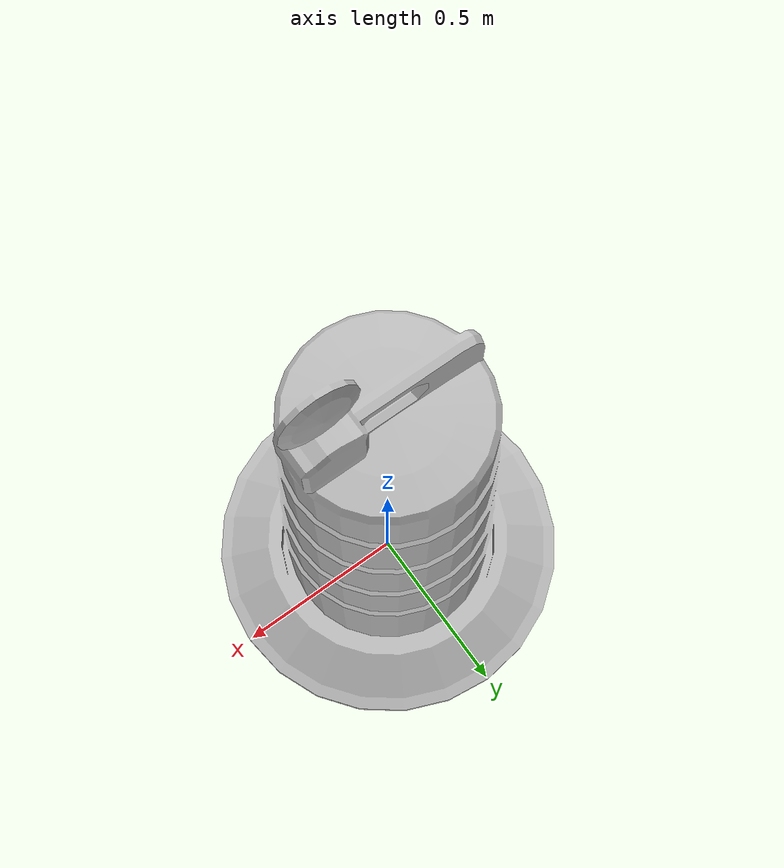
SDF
<?xml version='1.0'?>
<sdf version='1.7'>
    <model name='barrels'>
    <pose>0 0 0 0 0 0</pose>
      <link name='Construction Barrel'>
        <collision name='collision'>
          <geometry>
            <mesh>
              <uri>model://construction_barrel/meshes/construction_barrel.dae</uri>
            </mesh>
          </geometry>
          <max_contacts>10</max_contacts>
          <surface>
            <contact>
              <ode/>
            </contact>
            <bounce/>
            <friction>
              <torsional>
                <ode/>
              </torsional>
              <ode/>
            </friction>
          </surface>
        </collision>
        <visual name='visual'>
          <geometry>
            <mesh>
              <uri>model://construction_barrel/meshes/construction_barrel.dae</uri>
            </mesh>
          </geometry>
        </visual>
        <self_collide>0</self_collide>
        <enable_wind>0</enable_wind>
        <kinematic>0</kinematic>
      </link>
      <link name='Construction Barrel_0'>
        <collision name='collision'>
          <geometry>
            <mesh>
              <uri>model://construction_barrel/meshes/construction_barrel.dae</uri>
            </mesh>
          </geometry>
          <max_contacts>10</max_contacts>
          <surface>
            <contact>
              <ode/>
            </contact>
            <bounce/>
            <friction>
              <torsional>
                <ode/>
              </torsional>
              <ode/>
            </friction>
          </surface>
        </collision>
        <visual name='visual'>
          <geometry>
            <mesh>
              <uri>model://construction_barrel/meshes/construction_barrel.dae</uri>
            </mesh>
          </geometry>
        </visual>
        <self_collide>0</self_collide>
        <enable_wind>0</enable_wind>
        <kinematic>0</kinematic>
      </link>

    </model>

</sdf>
